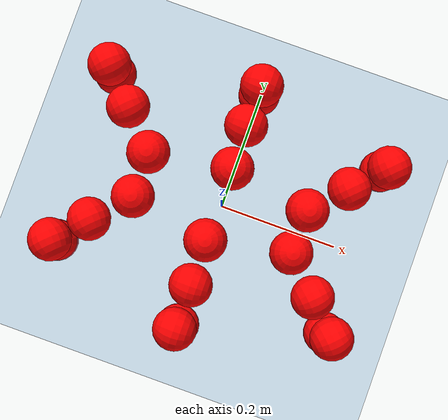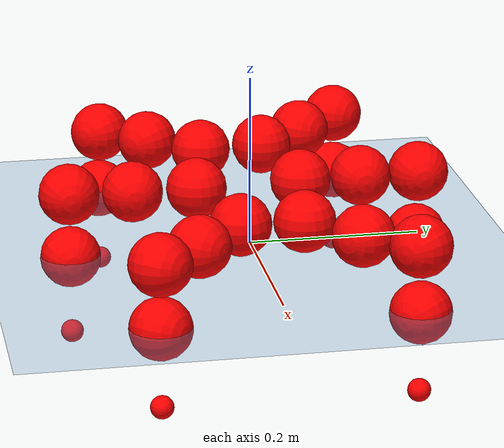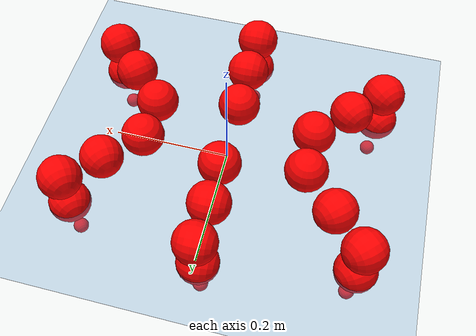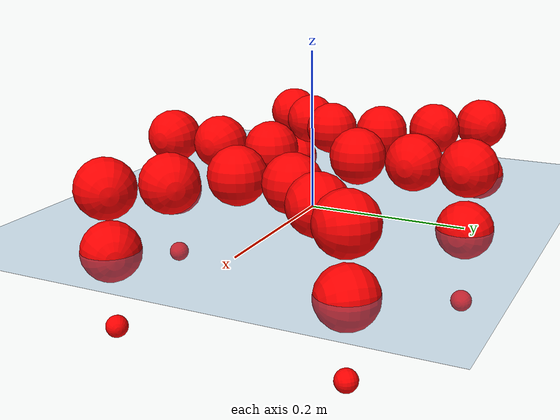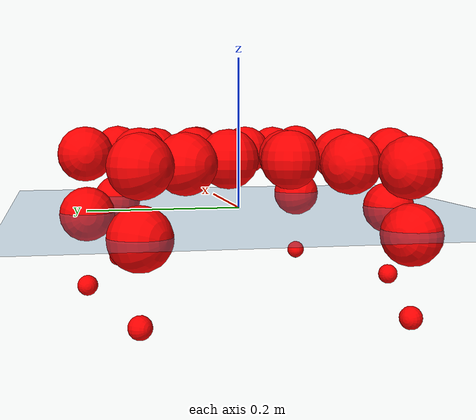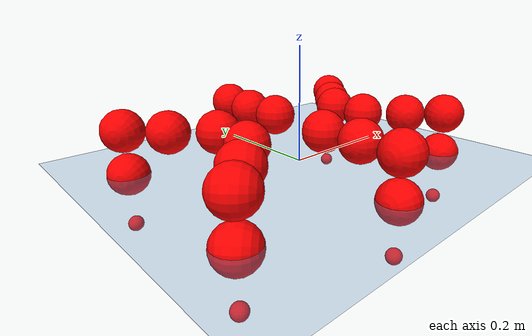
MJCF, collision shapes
<mujoco model="Golem">
  <compiler angle="radian" assetdir="assets" balanceinertia="true" inertiafromgeom="false"/>

  <option timestep="0.005" density="1.2" viscosity="2e-05"/>

  <size nkey="1"/>

  <visual>
    <quality shadowsize="8192"/>
    <map shadowclip="0.5"/>
  </visual>

  <default>
    <default class="/">
      <joint armature="0.01" damping="0.01" frictionloss="0.01"/>
      <geom contype="0" conaffinity="0" group="1" solref="-1000 -80"/>
      <site size="0.01 0.005 0.005" group="5"/>
      <general forcelimited="true" biastype="affine" gainprm="25" biasprm="0 -25 -0.5"/>
      <default class="visual">
        <geom type="mesh" group="2"/>
      </default>
      <default class="collision">
        <geom group="3"/>
      </default>
      <default class="foot">
        <geom size="0.01 0 0" condim="6" group="4" priority="1" solimp="0.015 1 0.01"/>
      </default>
      <default class="reward_collision_sphere">
        <geom group="5" rgba="1 0 0 1"/>
      </default>
    </default>
  </default>

  <asset>
    <texture type="skybox" colorspace="auto" name="//unnamed_texture_0" builtin="gradient" rgb1="0.95 0.95 0.95" rgb2="0.95 0.95 0.95" width="100" height="600"/>
    <texture type="2d" colorspace="auto" name="texplane" builtin="checker" rgb1="0.345 0.575 0.748" rgb2="0.345 0.575 0.748" markrgb="1 1 1" width="512" height="512"/>
    <material name="MatPlane" class="/" texture="texplane" texuniform="true" texrepeat="2 2" specular="0.9"/>
    <mesh name="body" class="/" file="body.stl" scale="0.001 0.001 0.001"/>
    <mesh name="coxa" class="/" file="coxa.stl" scale="0.001 0.001 0.001"/>
    <mesh name="femur" class="/" file="femur.stl" scale="0.001 0.001 0.001"/>
    <mesh name="tibia" class="/" file="tibia.stl" scale="0.001 0.001 0.001"/>
    <mesh name="tarsus" class="/" file="tarsus.stl" scale="0.001 0.001 0.001"/>
  </asset>

  <worldbody>
    <geom name="floor" class="/" size="100 100 0.125" type="plane" group="0" material="MatPlane"/>
    <light name="toplight_shadow" class="/" pos="0 0 5" dir="0.0990148 0.0990148 -0.990148" type="directional" ambient="0.04 0.04 0.04" diffuse="0.55 0.55 0.55" specular="0.12 0.12 0.12"/>
    <light name="toplight_fill" class="/" pos="0 0 5" dir="0.0990148 0.0990148 -0.990148" type="directional" castshadow="false" ambient="0.04 0.04 0.04" diffuse="0.3 0.3 0.3" specular="0.08 0.08 0.08"/>
    <body name="trunk" pos="-0.00259735 0.000322744 -6.2246e-05" quat="0.999999 0.00128471 0.000110214 -0.000132628">
      <inertial pos="0.00155713 0.00207343 0.000122047" quat="0.999958 -0.000466097 -0.00270157 0.00876222" mass="2.43488" diaginertia="0.00456729 0.00142375 0.0158458"/>
      <joint name="//unnamed_joint_0" type="free"/>
      <geom name="//unnamed_geom_1" class="/" pos="0 0 0.0708058" quat="1 0 0 0" type="mesh" rgba="0.9 0.9 0.9 1" mesh="body"/>
      <site name="imu" class="/" pos="0.109352 0.0137997 0.103092" size="0.00882158"/>
      <camera name="track" class="/" pos="0 -1.35523 0" quat="0.707107 0.707107 0 0" mode="trackcom"/>
      <camera name="ego_camera" class="/" pos="0.112128 0 0.110634" quat="-0.5 -0.5 0.5 0.5"/>
      <body name="coxa_RR" pos="-0.154153 -0.0535183 0.0716204" quat="0.38218 -0.0011727 -0.00050858 -0.924087">
        <inertial pos="0.00221388 0.00106864 0.00144536" quat="0.999937 -0.00603667 0.00941881 0.000499478" mass="0.146288" diaginertia="0.00495525 0.00148289 0.0171672"/>
        <joint name="coxa_joint_RR" class="/" pos="0 0 0" axis="0.000288461 -0.00189204 -0.999998" range="-3.14354 3.09342" armature="0.00986321" damping="0.0182587" frictionloss="0.00890955"/>
        <geom name="//unnamed_geom_2" class="/" type="mesh" rgba="0.2 0.2 0.2 1" mesh="coxa"/>
        <geom name="//unnamed_geom_3" class="reward_collision_sphere" size="0.0352863" pos="-0.0258756 0 0"/>
        <body name="femur_RR" pos="0.0526913 0.00299683 -0.00254462" quat="0.498935 -0.500646 0.500345 0.500072">
          <inertial pos="0.00276048 0.000804886 -0.000799257" quat="0.999907 -0.0123298 0.00352261 -0.00468928" mass="0.139173" diaginertia="0.00485098 0.00145194 0.0166675"/>
          <joint name="femur_joint_RR" class="/" pos="0 0 0" axis="-0.00292992 -0.00132317 -0.999995" stiffness="0.0102989" range="-3.1005 3.09486" armature="0.0089246" damping="0.0133702" frictionloss="0.00921009"/>
          <geom name="//unnamed_geom_4" class="/" type="mesh" rgba="0.9 0.9 0.9 1" mesh="femur"/>
          <geom name="//unnamed_geom_5" class="reward_collision_sphere" size="0.0352863"/>
          <body name="tibia_RR" pos="0.00194803 -0.0708509 0.00270802" quat="0.00029153 1 -0.000926979 -0.000122921">
            <inertial pos="-0.00267223 -0.00108204 -3.93957e-05" quat="0.999988 -0.00281262 0.00185363 0.00353514" mass="0.142106" diaginertia="0.00485303 0.00144701 0.0172449"/>
            <joint name="tibia_joint_RR" class="/" pos="0 0 0" axis="0.0121243 0.00817222 0.999893" stiffness="0.0101643" range="-3.15377 3.12846" armature="0.00882918" damping="0.000150682" frictionloss="0.00905889"/>
            <geom name="//unnamed_geom_6" class="/" type="mesh" rgba="0.2 0.2 0.2 1" mesh="tibia"/>
            <geom name="//unnamed_geom_7" class="reward_collision_sphere" size="0.0352863"/>
            <body name="tarsus_RR" pos="0.0741318 0.00276159 -0.000165085" quat="1 -0.000823225 -0.000145854 0.000493206">
              <inertial pos="0.0516531 0.000819973 -0.000608748" quat="0.500503 0.498677 0.50102 0.499798" mass="0.141616" diaginertia="0.00499611 0.00148231 0.0171324"/>
              <joint name="tarsus_joint_RR" class="/" pos="0 0 0" axis="-0.00170854 -0.000160934 0.999999" range="-3.13884 3.13986" armature="0.00840618" damping="0.0390389" frictionloss="0.00761905"/>
              <geom name="//unnamed_geom_8" class="/" type="mesh" rgba="0.9 0.9 0.9 1" mesh="tarsus"/>
              <geom name="foot_1" class="foot" size="0.00919672" pos="0.0966024 0 0" quat="0 -0.707107 0 0.707107"/>
              <geom name="//unnamed_geom_10" class="reward_collision_sphere" size="0.0352863"/>
              <geom name="//unnamed_geom_11" class="reward_collision_sphere" size="0.0132324" pos="0.092721 0 0"/>
              <site name="foot_1" class="foot" pos="0.0966024 0 0" quat="0 -0.707107 0 0.707107" size="0.00882158"/>
            </body>
          </body>
        </body>
      </body>
      <body name="coxa_RM" pos="-0.0028724 -0.0882408 0.0695741" quat="0.707027 0.000107503 -5.42983e-06 -0.707186">
        <inertial pos="-0.00267671 1.27668e-06 0.00114812" quat="0.999996 0.00158357 0.00143792 -0.00157511" mass="0.141406" diaginertia="0.00485383 0.00150346 0.017217"/>
        <joint name="coxa_joint_RM" class="/" pos="0 0 0" axis="-7.55255e-05 0.000797822 -1" range="-3.08517 3.14068" armature="0.0100051" damping="0.0140262" frictionloss="0.00857651"/>
        <geom name="//unnamed_geom_12" class="/" type="mesh" rgba="0.2 0.2 0.2 1" mesh="coxa"/>
        <geom name="//unnamed_geom_13" class="reward_collision_sphere" size="0.0352863" pos="-0.0258756 0 0"/>
        <body name="femur_RM" pos="0.0491769 0.00210613 0.00132703" quat="0.499953 -0.500758 0.49935 0.499938">
          <inertial pos="-0.000692036 -0.00204333 0.000549787" quat="0.999925 0.00172046 0.0114786 0.00397163" mass="0.135525" diaginertia="0.00456516 0.00139103 0.0162619"/>
          <joint name="femur_joint_RM" class="/" pos="0 0 0" axis="-0.000947819 0.000234582 -1" range="-3.18736 3.148" armature="0.00857119" damping="0.0108322" frictionloss="0.00879578"/>
          <geom name="//unnamed_geom_14" class="/" type="mesh" rgba="0.9 0.9 0.9 1" mesh="femur"/>
          <geom name="//unnamed_geom_15" class="reward_collision_sphere" size="0.0352863"/>
          <body name="tibia_RM" pos="-0.00127243 -0.073588 -0.000721001" quat="0.00103288 0.999999 -0.000437935 -4.54781e-05">
            <inertial pos="-0.00256494 -9.5864e-05 0.000569317" quat="0.999911 -0.0118957 -0.00367167 -0.0048617" mass="0.136789" diaginertia="0.00479941 0.00139331 0.016246"/>
            <joint name="tibia_joint_RM" class="/" pos="0 0 0" axis="0.000282336 -0.000591975 1" range="-3.14098 3.13236" armature="0.00928937" damping="0" frictionloss="0.00904712"/>
            <geom name="//unnamed_geom_16" class="/" type="mesh" rgba="0.2 0.2 0.2 1" mesh="tibia"/>
            <geom name="//unnamed_geom_17" class="reward_collision_sphere" size="0.0352863"/>
            <body name="tarsus_RM" pos="0.075546 0.000108072 -0.00223413" quat="0.999999 0.000804136 0.000734264 0.000747058">
              <inertial pos="0.0512005 -0.000653756 0.000432843" quat="0.499922 0.500623 0.500512 0.498941" mass="0.135567" diaginertia="0.00483502 0.00140953 0.0171356"/>
              <joint name="tarsus_joint_RM" class="/" pos="0 0 0" axis="-0.00258034 -0.0140121 0.999898" range="-3.18986 3.18553" armature="0.00791471" damping="0.00761936" frictionloss="0.00779503"/>
              <geom name="//unnamed_geom_18" class="/" type="mesh" rgba="0.9 0.9 0.9 1" mesh="tarsus"/>
              <geom name="foot_2" class="foot" size="0.00873271" pos="0.0966024 0 0" quat="0 -0.707107 0 0.707107"/>
              <geom name="//unnamed_geom_20" class="reward_collision_sphere" size="0.0352863"/>
              <geom name="//unnamed_geom_21" class="reward_collision_sphere" size="0.0132324" pos="0.092721 0 0"/>
              <site name="foot_2" class="foot" pos="0.0966024 0 0" quat="0 -0.707107 0 0.707107" size="0.00882158"/>
            </body>
          </body>
        </body>
      </body>
      <body name="coxa_RF" pos="0.150871 -0.0533034 0.0714121" quat="0.924098 -0.000428707 0.00110465 -0.382153">
        <inertial pos="0.00275945 0.00267417 0.000190181" quat="0.999998 0.000149212 -0.00175341 -0.000421146" mass="0.135044" diaginertia="0.00480476 0.00138446 0.0166379"/>
        <joint name="coxa_joint_RF" class="/" pos="0 0 0" axis="0.00818109 -0.00554838 -0.999951" range="-3.11148 3.08624" armature="0.0085379" damping="0.0297561" frictionloss="0.00838341"/>
        <geom name="//unnamed_geom_22" class="/" type="mesh" rgba="0.2 0.2 0.2 1" mesh="coxa"/>
        <geom name="//unnamed_geom_23" class="reward_collision_sphere" size="0.0352863" pos="-0.0258756 0 0"/>
        <body name="femur_RF" pos="0.0526995 3.86261e-05 -0.0010333" quat="0.500298 -0.500368 0.498889 0.500443">
          <inertial pos="0.000666436 -0.00219788 0.00257464" quat="0.999905 0.0064962 0.00899003 0.00822638" mass="0.136772" diaginertia="0.00463951 0.00138382 0.0155238"/>
          <joint name="femur_joint_RF" class="/" pos="0 0 0" axis="0.0106457 0.00498683 -0.999931" stiffness="0.000514122" range="-3.12561 3.09954" armature="0.00995712" damping="0.004856" frictionloss="0.0100016"/>
          <geom name="//unnamed_geom_24" class="/" type="mesh" rgba="0.9 0.9 0.9 1" mesh="femur"/>
          <geom name="//unnamed_geom_25" class="reward_collision_sphere" size="0.0352863"/>
          <body name="tibia_RF" pos="-0.00125856 -0.0711237 -0.00108341" quat="0.000625465 1 0.000202243 -0.000362561">
            <inertial pos="-0.000606497 8.73416e-05 -0.000742388" quat="0.999908 -0.0112924 0.00189984 0.00727814" mass="0.134263" diaginertia="0.00454994 0.00138974 0.0164635"/>
            <joint name="tibia_joint_RF" class="/" pos="0 0 0" axis="-0.00225969 0.0032282 0.999992" range="-3.14449 3.19178" armature="0.00842071" damping="0.000850032" frictionloss="0.00895379"/>
            <geom name="//unnamed_geom_26" class="/" type="mesh" rgba="0.2 0.2 0.2 1" mesh="tibia"/>
            <geom name="//unnamed_geom_27" class="reward_collision_sphere" size="0.0352863"/>
            <body name="tarsus_RF" pos="0.0744138 -0.00120903 0.00129975" quat="0.999999 0.000946668 0.000527208 -0.00044392">
              <inertial pos="0.0521885 -7.19561e-06 -0.000101572" quat="0.491041 0.50386 0.506198 0.498765" mass="0.13316" diaginertia="0.00465856 0.00139341 0.0155684"/>
              <joint name="tarsus_joint_RF" class="/" pos="0 0 0" axis="5.68909e-05 2.28329e-05 1" range="-3.145 3.14479" armature="0.00866758" damping="0.00747179" frictionloss="0.00978007"/>
              <geom name="//unnamed_geom_28" class="/" type="mesh" rgba="0.9 0.9 0.9 1" mesh="tarsus"/>
              <geom name="foot_3" class="foot" size="0.00963381" pos="0.0966024 0 0" quat="0 -0.707107 0 0.707107"/>
              <geom name="//unnamed_geom_30" class="reward_collision_sphere" size="0.0352863"/>
              <geom name="//unnamed_geom_31" class="reward_collision_sphere" size="0.0132324" pos="0.092721 0 0"/>
              <site name="foot_3" class="foot" pos="0.0966024 0 0" quat="0 -0.707107 0 0.707107" size="0.00882158"/>
            </body>
          </body>
        </body>
      </body>
      <body name="coxa_LR" pos="-0.154924 0.0576283 0.0731011" quat="0.381953 -0.00047119 -0.000871928 0.924181">
        <inertial pos="0.000129915 -0.00062812 0.000417488" quat="0.999997 0.00208295 -0.00130994 -0.000552873" mass="0.135815" diaginertia="0.00463452 0.00141768 0.0161731"/>
        <joint name="coxa_joint_LR" class="/" pos="0 0 0" axis="-0.012863 -0.00966685 -0.999871" range="-3.08426 3.13938" armature="0.00822589" damping="0.0145749" frictionloss="0.00906531"/>
        <geom name="//unnamed_geom_32" class="/" type="mesh" rgba="0.2 0.2 0.2 1" mesh="coxa"/>
        <geom name="//unnamed_geom_33" class="reward_collision_sphere" size="0.0352863" pos="-0.0258756 0 0"/>
        <body name="femur_LR" pos="0.0548442 -0.00198178 -0.00212914" quat="0.499876 -0.500396 0.49984 0.499887">
          <inertial pos="-5.58764e-05 0.000883526 0.00125496" quat="0.99999 -0.000463891 -0.00300056 -0.00321616" mass="0.137964" diaginertia="0.00486578 0.00139513 0.0170106"/>
          <joint name="femur_joint_LR" class="/" pos="0 0 0" axis="-0.00396872 -0.00485502 0.99998" range="-3.19462 3.19362" armature="0.00905041" damping="0" frictionloss="0.00887869"/>
          <geom name="//unnamed_geom_34" class="/" type="mesh" rgba="0.9 0.9 0.9 1" mesh="femur"/>
          <geom name="//unnamed_geom_35" class="reward_collision_sphere" size="0.0352863"/>
          <body name="tibia_LR" pos="-0.000976746 -0.074412 -0.00187737" quat="2.72479e-05 1 -0.000111841 -0.00014006">
            <inertial pos="-0.00240018 0.0001323 -0.00251575" quat="0.999986 0.00131001 -0.00438221 0.00278656" mass="0.137265" diaginertia="0.00487095 0.00149764 0.0162976"/>
            <joint name="tibia_joint_LR" class="/" pos="0 0 0" axis="-0.000880087 -0.00285672 -0.999996" range="-3.08704 3.19289" armature="0.0080795" damping="0.00339078" frictionloss="0.00860654"/>
            <geom name="//unnamed_geom_36" class="/" type="mesh" rgba="0.2 0.2 0.2 1" mesh="tibia"/>
            <geom name="//unnamed_geom_37" class="reward_collision_sphere" size="0.0352863"/>
            <body name="tarsus_LR" pos="0.0753149 7.94248e-05 0.000239672" quat="1 6.77704e-05 0.000211127 7.12325e-05">
              <inertial pos="0.0515325 0.000578111 -0.000101138" quat="0.500152 0.49991 0.500026 0.499912" mass="0.139635" diaginertia="0.00481776 0.00152173 0.0171695"/>
              <joint name="tarsus_joint_LR" class="/" pos="0 0 0" axis="0.0097976 -0.00936772 -0.999908" stiffness="0.00667272" range="-3.11918 3.0871" armature="0.00920884" damping="0.0271872" frictionloss="0.0100045"/>
              <geom name="//unnamed_geom_38" class="/" type="mesh" rgba="0.9 0.9 0.9 1" mesh="tarsus"/>
              <geom name="foot_4" class="foot" size="0.00886622" pos="0.0966024 0 0" quat="0.707107 0 -0.707107 0"/>
              <geom name="//unnamed_geom_40" class="reward_collision_sphere" size="0.0352863"/>
              <geom name="//unnamed_geom_41" class="reward_collision_sphere" size="0.0132324" pos="0.092721 0 0"/>
              <site name="foot_4" class="foot" pos="0.0966024 0 0" quat="0.707107 0 -0.707107 0" size="0.00882158"/>
            </body>
          </body>
        </body>
      </body>
      <body name="coxa_LM" pos="-0.00100364 0.085808 0.0729653" quat="0.707034 -0.000667659 2.71419e-05 0.707179">
        <inertial pos="0.0029632 0.0024034 0.000555607" quat="1 -7.96441e-05 -5.49557e-05 -0.000210324" mass="0.137942" diaginertia="0.00478453 0.00143276 0.0166992"/>
        <joint name="coxa_joint_LM" class="/" pos="0 0 0" axis="-0.00169482 0.0039304 -0.999991" range="-3.09544 3.09371" armature="0.0100382" damping="0.00489744" frictionloss="0.00974054"/>
        <geom name="//unnamed_geom_42" class="/" type="mesh" rgba="0.2 0.2 0.2 1" mesh="coxa"/>
        <geom name="//unnamed_geom_43" class="reward_collision_sphere" size="0.0352863" pos="-0.0258756 0 0"/>
        <body name="femur_LM" pos="0.0465778 0.00250748 -0.000383097" quat="0.500867 -0.499046 0.499777 0.500308">
          <inertial pos="-0.00239061 0.0018289 0.00100494" quat="0.999909 0.00567314 -0.0083239 0.00898922" mass="0.136557" diaginertia="0.00490619 0.00137698 0.016355"/>
          <joint name="femur_joint_LM" class="/" pos="0 0 0" axis="0.000524645 0.000922255 0.999999" stiffness="0.00823904" range="-3.12342 3.13668" armature="0.00769551" damping="0" frictionloss="0.00861375"/>
          <geom name="//unnamed_geom_44" class="/" type="mesh" rgba="0.9 0.9 0.9 1" mesh="femur"/>
          <geom name="//unnamed_geom_45" class="reward_collision_sphere" size="0.0352863"/>
          <body name="tibia_LM" pos="-0.00141392 -0.0688983 -0.00233659" quat="-0.000138171 1 0.000118225 3.84416e-05">
            <inertial pos="4.54961e-05 0.000864449 0.00168578" quat="0.999999 0.00127801 -0.00079816 0.000556318" mass="0.133547" diaginertia="0.00460271 0.0014292 0.0164923"/>
            <joint name="tibia_joint_LM" class="/" pos="0 0 0" axis="-0.000386368 -0.0120647 -0.999927" range="-3.14793 3.19109" armature="0.00910643" damping="0" frictionloss="0.00785782"/>
            <geom name="//unnamed_geom_46" class="/" type="mesh" rgba="0.2 0.2 0.2 1" mesh="tibia"/>
            <geom name="//unnamed_geom_47" class="reward_collision_sphere" size="0.0352863"/>
            <body name="tarsus_LM" pos="0.0776705 -0.00134941 -0.000215523" quat="1 -1.19472e-05 -1.23673e-05 5.77163e-05">
              <inertial pos="0.0528555 0.000245748 -0.000184789" quat="0.500437 0.493876 0.498997 0.506607" mass="0.146279" diaginertia="0.00502578 0.00146118 0.0165515"/>
              <joint name="tarsus_joint_LM" class="/" pos="0 0 0" axis="-0.00323357 -0.00446575 -0.999985" stiffness="0.0125864" range="-3.14028 3.08952" armature="0.00873379" damping="0.0198675" frictionloss="0.00886133"/>
              <geom name="//unnamed_geom_48" class="/" type="mesh" rgba="0.9 0.9 0.9 1" mesh="tarsus"/>
              <geom name="foot_5" class="foot" size="0.00909907" pos="0.0966024 0 0" quat="0.707107 0 -0.707107 0"/>
              <geom name="//unnamed_geom_50" class="reward_collision_sphere" size="0.0352863"/>
              <geom name="//unnamed_geom_51" class="reward_collision_sphere" size="0.0132324" pos="0.092721 0 0"/>
              <site name="foot_5" class="foot" pos="0.0966024 0 0" quat="0.707107 0 -0.707107 0" size="0.00882158"/>
            </body>
          </body>
        </body>
      </body>
      <body name="coxa_LF" pos="0.152786 0.0556185 0.0714022" quat="0.92388 6.30994e-07 -2.819e-07 0.382683">
        <inertial pos="-0.000159055 -0.000446195 5.9004e-05" quat="1 0.000223469 -0.000277043 0.000449203" mass="0.134363" diaginertia="0.00467641 0.00144897 0.0168009"/>
        <joint name="coxa_joint_LF" class="/" pos="0 0 0" axis="-0.00979369 -0.00125157 -0.999951" range="-3.15376 3.11343" armature="0.00887066" damping="0.0132731" frictionloss="0.00872881"/>
        <geom name="//unnamed_geom_52" class="/" type="mesh" rgba="0.2 0.2 0.2 1" mesh="coxa"/>
        <geom name="//unnamed_geom_53" class="reward_collision_sphere" size="0.0352863" pos="-0.0258756 0 0"/>
        <body name="femur_LF" pos="0.0497092 0.0026577 -0.0023658" quat="0.499982 -0.499992 0.500018 0.500009">
          <inertial pos="-0.00281386 0.00102634 0.000239525" quat="0.999998 0.00131533 0.000710402 0.000930989" mass="0.137572" diaginertia="0.00468194 0.0013425 0.0158624"/>
          <joint name="femur_joint_LF" class="/" pos="0 0 0" axis="-0.0113542 -0.00992553 0.999886" stiffness="0.00416851" range="-3.13888 3.08481" armature="0.00759519" damping="0.000590552" frictionloss="0.00845423"/>
          <geom name="//unnamed_geom_54" class="/" type="mesh" rgba="0.9 0.9 0.9 1" mesh="femur"/>
          <geom name="//unnamed_geom_55" class="reward_collision_sphere" size="0.0352863"/>
          <body name="tibia_LF" pos="-0.0022402 -0.0723753 0.00312082" quat="6.90495e-05 1 -0.000128704 -0.000144912">
            <inertial pos="8.97531e-05 0.00175029 -0.00107294" quat="0.999909 0.00786543 -0.00732699 -0.00815993" mass="0.134625" diaginertia="0.00474178 0.00144995 0.0165954"/>
            <joint name="tibia_joint_LF" class="/" pos="0 0 0" axis="-6.40059e-05 -0.000201663 -1" stiffness="0.00156205" range="-3.12848 3.10279" armature="0.00780633" damping="0" frictionloss="0.00889969"/>
            <geom name="//unnamed_geom_56" class="/" type="mesh" rgba="0.2 0.2 0.2 1" mesh="tibia"/>
            <geom name="//unnamed_geom_57" class="reward_collision_sphere" size="0.0352863"/>
            <body name="tarsus_LF" pos="0.0775497 0.000885986 -0.000424317" quat="0.999999 -0.000484875 -0.000786864 0.000695235">
              <inertial pos="0.0546824 -0.00246507 -0.000671333" quat="0.500023 0.499867 0.500008 0.500102" mass="0.132274" diaginertia="0.00462644 0.00137791 0.0162238"/>
              <joint name="tarsus_joint_LF" class="/" pos="0 0 0" axis="-0.0133339 -0.00355253 -0.999905" range="-3.08438 3.11964" armature="0.00856522" damping="0.0230314" frictionloss="0.0086058"/>
              <geom name="//unnamed_geom_58" class="/" type="mesh" rgba="0.9 0.9 0.9 1" mesh="tarsus"/>
              <geom name="foot_6" class="foot" size="0.00783529" pos="0.0966024 0 0" quat="0.707107 0 -0.707107 0"/>
              <geom name="//unnamed_geom_60" class="reward_collision_sphere" size="0.0352863"/>
              <geom name="//unnamed_geom_61" class="reward_collision_sphere" size="0.0132324" pos="0.092721 0 0"/>
              <site name="foot_6" class="foot" pos="0.0966024 0 0" quat="0.707107 0 -0.707107 0" size="0.00882158"/>
            </body>
          </body>
        </body>
      </body>
    </body>
  </worldbody>

  <contact>
    <pair class="/" geom1="floor" geom2="foot_1" name="//unnamed_contact_0"/>
    <pair class="/" geom1="floor" geom2="foot_2" name="//unnamed_contact_1"/>
    <pair class="/" geom1="floor" geom2="foot_3" name="//unnamed_contact_2"/>
    <pair class="/" geom1="floor" geom2="foot_4" name="//unnamed_contact_3"/>
    <pair class="/" geom1="floor" geom2="foot_5" name="//unnamed_contact_4"/>
    <pair class="/" geom1="floor" geom2="foot_6" name="//unnamed_contact_5"/>
  </contact>

  <actuator>
    <general name="coxa_joint_RR" class="/" joint="coxa_joint_RR" forcerange="-6.25867 6.25867" gainprm="21.9282" biasprm="0 -21.9282 -0.431178"/>
    <general name="femur_joint_RR" class="/" joint="femur_joint_RR" forcerange="-6.47754 6.47754" gainprm="21.9282" biasprm="0 -21.9282 -0.431178"/>
    <general name="tibia_joint_RR" class="/" joint="tibia_joint_RR" forcerange="-6.473 6.473" gainprm="21.9282" biasprm="0 -21.9282 -0.431178"/>
    <general name="tarsus_joint_RR" class="/" joint="tarsus_joint_RR" forcerange="-6.53714 6.53714" gainprm="21.9282" biasprm="0 -21.9282 -0.431178"/>
    <general name="coxa_joint_RM" class="/" joint="coxa_joint_RM" forcerange="-6.46471 6.46471" gainprm="21.9282" biasprm="0 -21.9282 -0.431178"/>
    <general name="femur_joint_RM" class="/" joint="femur_joint_RM" forcerange="-5.78686 5.78686" gainprm="21.9282" biasprm="0 -21.9282 -0.431178"/>
    <general name="tibia_joint_RM" class="/" joint="tibia_joint_RM" forcerange="-6.45035 6.45035" gainprm="21.9282" biasprm="0 -21.9282 -0.431178"/>
    <general name="tarsus_joint_RM" class="/" joint="tarsus_joint_RM" forcerange="-6.52986 6.52986" gainprm="21.9282" biasprm="0 -21.9282 -0.431178"/>
    <general name="coxa_joint_RF" class="/" joint="coxa_joint_RF" forcerange="-5.77474 5.77474" gainprm="21.9282" biasprm="0 -21.9282 -0.431178"/>
    <general name="femur_joint_RF" class="/" joint="femur_joint_RF" forcerange="-5.805 5.805" gainprm="21.9282" biasprm="0 -21.9282 -0.431178"/>
    <general name="tibia_joint_RF" class="/" joint="tibia_joint_RF" forcerange="-7.05474 7.05474" gainprm="21.9282" biasprm="0 -21.9282 -0.431178"/>
    <general name="tarsus_joint_RF" class="/" joint="tarsus_joint_RF" forcerange="-6.6977 6.6977" gainprm="21.9282" biasprm="0 -21.9282 -0.431178"/>
    <general name="coxa_joint_LR" class="/" joint="coxa_joint_LR" forcerange="-6.659 6.659" gainprm="21.9282" biasprm="0 -21.9282 -0.431178"/>
    <general name="femur_joint_LR" class="/" joint="femur_joint_LR" forcerange="-6.01428 6.01428" gainprm="21.9282" biasprm="0 -21.9282 -0.431178"/>
    <general name="tibia_joint_LR" class="/" joint="tibia_joint_LR" forcerange="-5.8059 5.8059" gainprm="21.9282" biasprm="0 -21.9282 -0.431178"/>
    <general name="tarsus_joint_LR" class="/" joint="tarsus_joint_LR" forcerange="-7.03645 7.03645" gainprm="21.9282" biasprm="0 -21.9282 -0.431178"/>
    <general name="coxa_joint_LM" class="/" joint="coxa_joint_LM" forcerange="-6.82088 6.82088" gainprm="21.9282" biasprm="0 -21.9282 -0.431178"/>
    <general name="femur_joint_LM" class="/" joint="femur_joint_LM" forcerange="-6.48307 6.48307" gainprm="21.9282" biasprm="0 -21.9282 -0.431178"/>
    <general name="tibia_joint_LM" class="/" joint="tibia_joint_LM" forcerange="-6.48778 6.48778" gainprm="21.9282" biasprm="0 -21.9282 -0.431178"/>
    <general name="tarsus_joint_LM" class="/" joint="tarsus_joint_LM" forcerange="-6.24383 6.24383" gainprm="21.9282" biasprm="0 -21.9282 -0.431178"/>
    <general name="coxa_joint_LF" class="/" joint="coxa_joint_LF" forcerange="-6.51917 6.51917" gainprm="21.9282" biasprm="0 -21.9282 -0.431178"/>
    <general name="femur_joint_LF" class="/" joint="femur_joint_LF" forcerange="-6.41297 6.41297" gainprm="21.9282" biasprm="0 -21.9282 -0.431178"/>
    <general name="tibia_joint_LF" class="/" joint="tibia_joint_LF" forcerange="-6.52298 6.52298" gainprm="21.9282" biasprm="0 -21.9282 -0.431178"/>
    <general name="tarsus_joint_LF" class="/" joint="tarsus_joint_LF" forcerange="-6.61921 6.61921" gainprm="21.9282" biasprm="0 -21.9282 -0.431178"/>
  </actuator>

  <sensor>
    <gyro site="imu" name="imu_angular_velocity"/>
    <velocimeter site="imu" name="imu_linear_velocity"/>
    <framelinvel objtype="site" objname="foot_1" name="foot_1_global_linear_velocity"/>
    <framelinvel objtype="site" objname="foot_2" name="foot_2_global_linear_velocity"/>
    <framelinvel objtype="site" objname="foot_3" name="foot_3_global_linear_velocity"/>
    <framelinvel objtype="site" objname="foot_4" name="foot_4_global_linear_velocity"/>
    <framelinvel objtype="site" objname="foot_5" name="foot_5_global_linear_velocity"/>
    <framelinvel objtype="site" objname="foot_6" name="foot_6_global_linear_velocity"/>
  </sensor>

  <keyframe>
    <key name="home" qpos="0 0 0.1457 1 0 0 0 0 0 0 0 0 0 0 0 0 0 0 0 0 0 0 0 0 0 0 0 0 0 0 0"/>
  </keyframe>
</mujoco>
